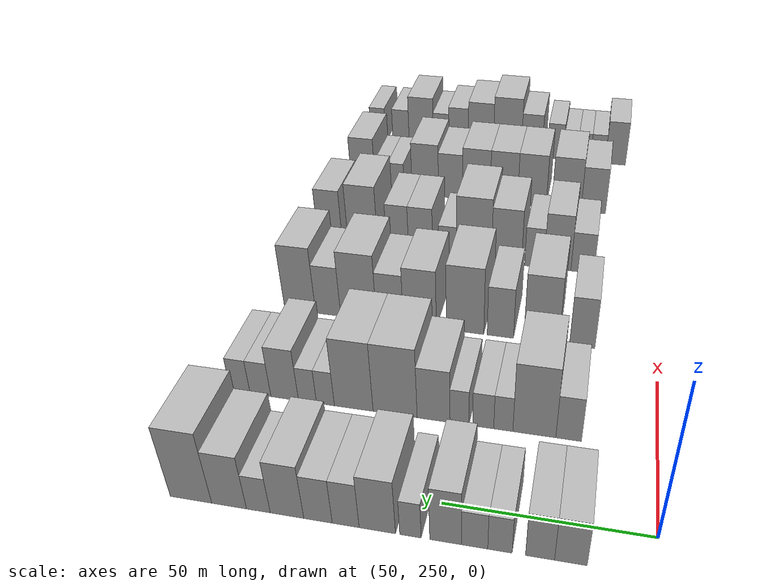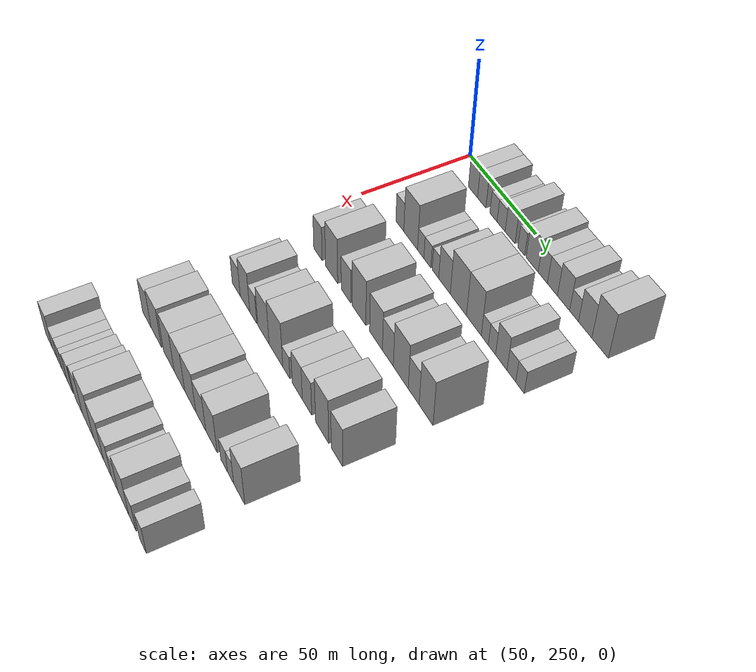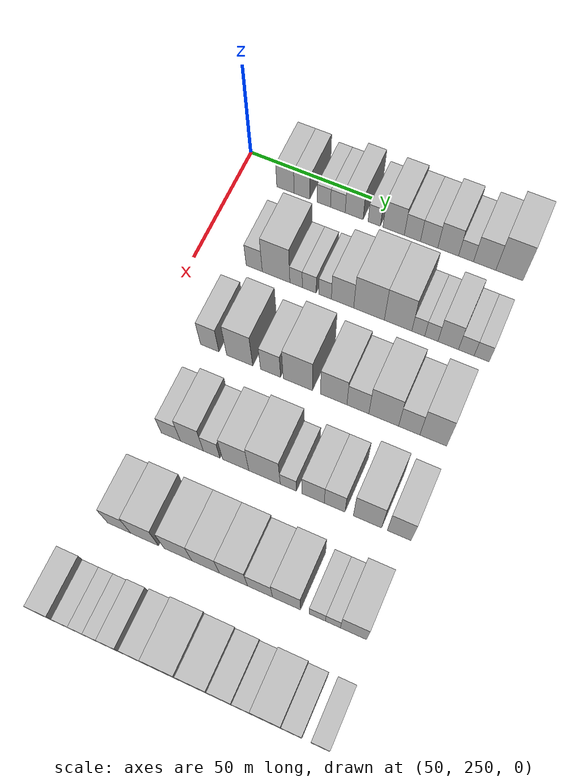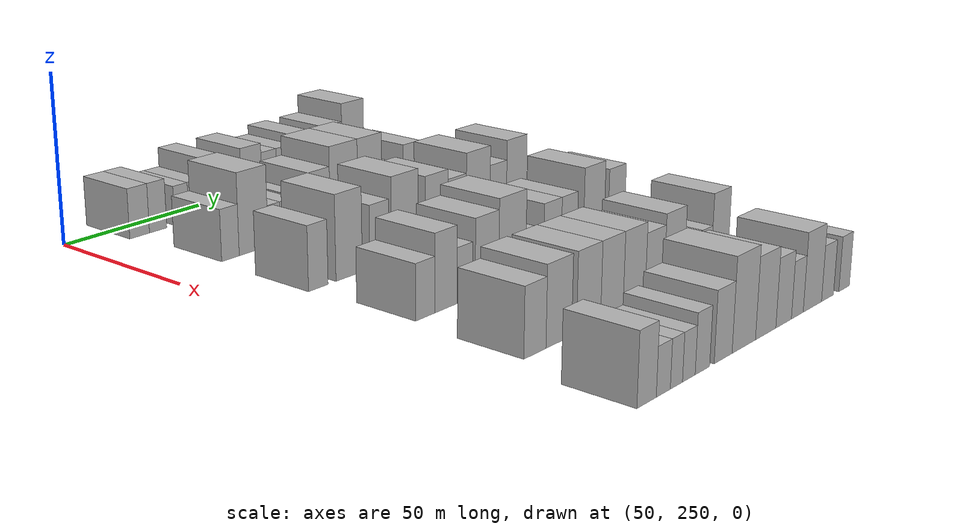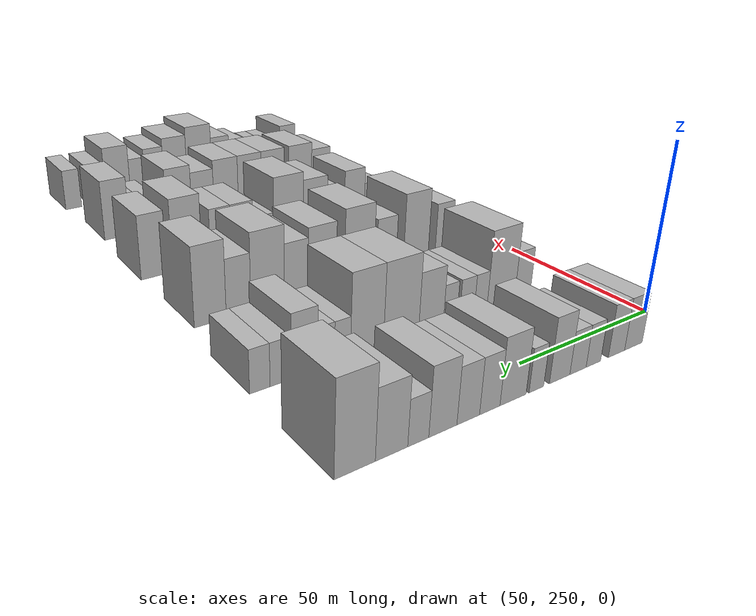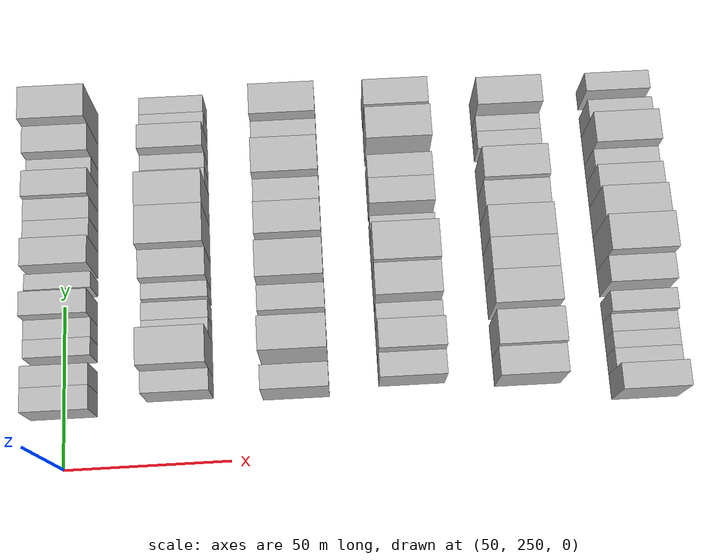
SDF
<sdf version="1.6">
 <world name="default">
  <model name="building_91">
   <static>1</static>
   <pose>50.0000 268.9574 0 0.000000 0.000000 0.000000</pose>
   <link name="link">
    <pose>0 0 7.50 0 0 0</pose>
    <collision name="collision"><geometry><box><size>20.0000 7.1795 15.0000</size></box></geometry></collision>
    <visual name="visual">
     <cast_shadows>0</cast_shadows>
     <geometry><box><size>20.0000 7.1795 15.0000</size></box></geometry>
     <material>
      <script>
       <uri>model://HANNAS_wall/materials/scripts</uri>
       <uri>model://HANNAS_wall/materials/textures</uri>
       <name>vrc/HANNAS_wall</name>
      </script>
     </material>
    </visual>
   </link>
  </model>
  <model name="building_92">
   <static>1</static>
   <pose>50.0000 275.7696 0 0.000000 0.000000 0.000000</pose>
   <link name="link">
    <pose>0 0 7.50 0 0 0</pose>
    <collision name="collision"><geometry><box><size>20.0000 6.4450 15.0000</size></box></geometry></collision>
    <visual name="visual">
     <cast_shadows>0</cast_shadows>
     <geometry><box><size>20.0000 6.4450 15.0000</size></box></geometry>
     <material>
      <script>
       <uri>model://HANNAS_wall/materials/scripts</uri>
       <uri>model://HANNAS_wall/materials/textures</uri>
       <name>vrc/HANNAS_wall</name>
      </script>
     </material>
    </visual>
   </link>
  </model>
  <model name="building_93">
   <static>1</static>
   <pose>50.0000 284.7324 0 0.000000 0.000000 0.000000</pose>
   <link name="link">
    <pose>0 0 6.00 0 0 0</pose>
    <collision name="collision"><geometry><box><size>20.0000 5.4806 12.0000</size></box></geometry></collision>
    <visual name="visual">
     <cast_shadows>0</cast_shadows>
     <geometry><box><size>20.0000 5.4806 12.0000</size></box></geometry>
     <material>
      <script>
       <uri>model://HANNAS_wall/materials/scripts</uri>
       <uri>model://HANNAS_wall/materials/textures</uri>
       <name>vrc/HANNAS_wall</name>
      </script>
     </material>
    </visual>
   </link>
  </model>
  <model name="building_94">
   <static>1</static>
   <pose>50.0000 290.4678 0 0.000000 0.000000 0.000000</pose>
   <link name="link">
    <pose>0 0 6.00 0 0 0</pose>
    <collision name="collision"><geometry><box><size>20.0000 5.9902 12.0000</size></box></geometry></collision>
    <visual name="visual">
     <cast_shadows>0</cast_shadows>
     <geometry><box><size>20.0000 5.9902 12.0000</size></box></geometry>
     <material>
      <script>
       <uri>model://HANNAS_wall/materials/scripts</uri>
       <uri>model://HANNAS_wall/materials/textures</uri>
       <name>vrc/HANNAS_wall</name>
      </script>
     </material>
    </visual>
   </link>
  </model>
  <model name="building_95">
   <static>1</static>
   <pose>50.0000 297.0967 0 0.000000 0.000000 0.000000</pose>
   <link name="link">
    <pose>0 0 9.00 0 0 0</pose>
    <collision name="collision"><geometry><box><size>20.0000 7.2676 18.0000</size></box></geometry></collision>
    <visual name="visual">
     <cast_shadows>0</cast_shadows>
     <geometry><box><size>20.0000 7.2676 18.0000</size></box></geometry>
     <material>
      <script>
       <uri>model://HANNAS_wall/materials/scripts</uri>
       <uri>model://HANNAS_wall/materials/textures</uri>
       <name>vrc/HANNAS_wall</name>
      </script>
     </material>
    </visual>
   </link>
  </model>
  <model name="building_96">
   <static>1</static>
   <pose>50.0000 305.2195 0 0.000000 0.000000 0.000000</pose>
   <link name="link">
    <pose>0 0 6.00 0 0 0</pose>
    <collision name="collision"><geometry><box><size>20.0000 4.9780 12.0000</size></box></geometry></collision>
    <visual name="visual">
     <cast_shadows>0</cast_shadows>
     <geometry><box><size>20.0000 4.9780 12.0000</size></box></geometry>
     <material>
      <script>
       <uri>model://HANNAS_wall/materials/scripts</uri>
       <uri>model://HANNAS_wall/materials/textures</uri>
       <name>vrc/HANNAS_wall</name>
      </script>
     </material>
    </visual>
   </link>
  </model>
  <model name="building_97">
   <static>1</static>
   <pose>50.0000 312.9854 0 0.000000 0.000000 0.000000</pose>
   <link name="link">
    <pose>0 0 9.00 0 0 0</pose>
    <collision name="collision"><geometry><box><size>20.0000 8.5539 18.0000</size></box></geometry></collision>
    <visual name="visual">
     <cast_shadows>0</cast_shadows>
     <geometry><box><size>20.0000 8.5539 18.0000</size></box></geometry>
     <material>
      <script>
       <uri>model://HANNAS_wall/materials/scripts</uri>
       <uri>model://HANNAS_wall/materials/textures</uri>
       <name>vrc/HANNAS_wall</name>
      </script>
     </material>
    </visual>
   </link>
  </model>
  <model name="building_98">
   <static>1</static>
   <pose>50.0000 320.4671 0 0.000000 0.000000 0.000000</pose>
   <link name="link">
    <pose>0 0 7.50 0 0 0</pose>
    <collision name="collision"><geometry><box><size>20.0000 6.4096 15.0000</size></box></geometry></collision>
    <visual name="visual">
     <cast_shadows>0</cast_shadows>
     <geometry><box><size>20.0000 6.4096 15.0000</size></box></geometry>
     <material>
      <script>
       <uri>model://HANNAS_wall/materials/scripts</uri>
       <uri>model://HANNAS_wall/materials/textures</uri>
       <name>vrc/HANNAS_wall</name>
      </script>
     </material>
    </visual>
   </link>
  </model>
  <model name="building_99">
   <static>1</static>
   <pose>50.0000 327.1015 0 0.000000 0.000000 0.000000</pose>
   <link name="link">
    <pose>0 0 7.50 0 0 0</pose>
    <collision name="collision"><geometry><box><size>20.0000 6.8591 15.0000</size></box></geometry></collision>
    <visual name="visual">
     <cast_shadows>0</cast_shadows>
     <geometry><box><size>20.0000 6.8591 15.0000</size></box></geometry>
     <material>
      <script>
       <uri>model://HANNAS_wall/materials/scripts</uri>
       <uri>model://HANNAS_wall/materials/textures</uri>
       <name>vrc/HANNAS_wall</name>
      </script>
     </material>
    </visual>
   </link>
  </model>
  <model name="building_100">
   <static>1</static>
   <pose>50.0000 334.6129 0 0.000000 0.000000 0.000000</pose>
   <link name="link">
    <pose>0 0 9.00 0 0 0</pose>
    <collision name="collision"><geometry><box><size>20.0000 8.1638 18.0000</size></box></geometry></collision>
    <visual name="visual">
     <cast_shadows>0</cast_shadows>
     <geometry><box><size>20.0000 8.1638 18.0000</size></box></geometry>
     <material>
      <script>
       <uri>model://HANNAS_wall/materials/scripts</uri>
       <uri>model://HANNAS_wall/materials/textures</uri>
       <name>vrc/HANNAS_wall</name>
      </script>
     </material>
    </visual>
   </link>
  </model>
  <model name="building_101">
   <static>1</static>
   <pose>50.0000 341.6225 0 0.000000 0.000000 0.000000</pose>
   <link name="link">
    <pose>0 0 6.00 0 0 0</pose>
    <collision name="collision"><geometry><box><size>20.0000 5.8554 12.0000</size></box></geometry></collision>
    <visual name="visual">
     <cast_shadows>0</cast_shadows>
     <geometry><box><size>20.0000 5.8554 12.0000</size></box></geometry>
     <material>
      <script>
       <uri>model://HANNAS_wall/materials/scripts</uri>
       <uri>model://HANNAS_wall/materials/textures</uri>
       <name>vrc/HANNAS_wall</name>
      </script>
     </material>
    </visual>
   </link>
  </model>
  <model name="building_102">
   <static>1</static>
   <pose>50.0000 348.8797 0 0.000000 0.000000 0.000000</pose>
   <link name="link">
    <pose>0 0 9.00 0 0 0</pose>
    <collision name="collision"><geometry><box><size>20.0000 8.6591 18.0000</size></box></geometry></collision>
    <visual name="visual">
     <cast_shadows>0</cast_shadows>
     <geometry><box><size>20.0000 8.6591 18.0000</size></box></geometry>
     <material>
      <script>
       <uri>model://HANNAS_wall/materials/scripts</uri>
       <uri>model://HANNAS_wall/materials/textures</uri>
       <name>vrc/HANNAS_wall</name>
      </script>
     </material>
    </visual>
   </link>
  </model>
  <model name="building_103">
   <static>1</static>
   <pose>50.0000 358.4333 0 0.000000 0.000000 0.000000</pose>
   <link name="link">
    <pose>0 0 12.00 0 0 0</pose>
    <collision name="collision"><geometry><box><size>20.0000 10.4479 24.0000</size></box></geometry></collision>
    <visual name="visual">
     <cast_shadows>0</cast_shadows>
     <geometry><box><size>20.0000 10.4479 24.0000</size></box></geometry>
     <material>
      <script>
       <uri>model://HANNAS_wall/materials/scripts</uri>
       <uri>model://HANNAS_wall/materials/textures</uri>
       <name>vrc/HANNAS_wall</name>
      </script>
     </material>
    </visual>
   </link>
  </model>
  <model name="building_221">
   <static>1</static>
   <pose>85.0000 272.3251 0 0.000000 0.000000 0.000000</pose>
   <link name="link">
    <pose>0 0 7.50 0 0 0</pose>
    <collision name="collision"><geometry><box><size>20.0000 6.4877 15.0000</size></box></geometry></collision>
    <visual name="visual">
     <cast_shadows>0</cast_shadows>
     <geometry><box><size>20.0000 6.4877 15.0000</size></box></geometry>
     <material>
      <script>
       <uri>model://HANNAS_wall/materials/scripts</uri>
       <uri>model://HANNAS_wall/materials/textures</uri>
       <name>vrc/HANNAS_wall</name>
      </script>
     </material>
    </visual>
   </link>
  </model>
  <model name="building_222">
   <static>1</static>
   <pose>85.0000 281.0751 0 0.000000 0.000000 0.000000</pose>
   <link name="link">
    <pose>0 0 12.00 0 0 0</pose>
    <collision name="collision"><geometry><box><size>20.0000 11.0123 24.0000</size></box></geometry></collision>
    <visual name="visual">
     <cast_shadows>0</cast_shadows>
     <geometry><box><size>20.0000 11.0123 24.0000</size></box></geometry>
     <material>
      <script>
       <uri>model://HANNAS_wall/materials/scripts</uri>
       <uri>model://HANNAS_wall/materials/textures</uri>
       <name>vrc/HANNAS_wall</name>
      </script>
     </material>
    </visual>
   </link>
  </model>
  <model name="building_223">
   <static>1</static>
   <pose>85.0000 289.0494 0 0.000000 0.000000 0.000000</pose>
   <link name="link">
    <pose>0 0 6.00 0 0 0</pose>
    <collision name="collision"><geometry><box><size>20.0000 4.9364 12.0000</size></box></geometry></collision>
    <visual name="visual">
     <cast_shadows>0</cast_shadows>
     <geometry><box><size>20.0000 4.9364 12.0000</size></box></geometry>
     <material>
      <script>
       <uri>model://HANNAS_wall/materials/scripts</uri>
       <uri>model://HANNAS_wall/materials/textures</uri>
       <name>vrc/HANNAS_wall</name>
      </script>
     </material>
    </visual>
   </link>
  </model>
  <model name="building_224">
   <static>1</static>
   <pose>85.0000 294.2669 0 0.000000 0.000000 0.000000</pose>
   <link name="link">
    <pose>0 0 6.00 0 0 0</pose>
    <collision name="collision"><geometry><box><size>20.0000 5.4985 12.0000</size></box></geometry></collision>
    <visual name="visual">
     <cast_shadows>0</cast_shadows>
     <geometry><box><size>20.0000 5.4985 12.0000</size></box></geometry>
     <material>
      <script>
       <uri>model://HANNAS_wall/materials/scripts</uri>
       <uri>model://HANNAS_wall/materials/textures</uri>
       <name>vrc/HANNAS_wall</name>
      </script>
     </material>
    </visual>
   </link>
  </model>
  <model name="building_225">
   <static>1</static>
   <pose>85.0000 300.5003 0 0.000000 0.000000 0.000000</pose>
   <link name="link">
    <pose>0 0 6.00 0 0 0</pose>
    <collision name="collision"><geometry><box><size>20.0000 4.9683 12.0000</size></box></geometry></collision>
    <visual name="visual">
     <cast_shadows>0</cast_shadows>
     <geometry><box><size>20.0000 4.9683 12.0000</size></box></geometry>
     <material>
      <script>
       <uri>model://HANNAS_wall/materials/scripts</uri>
       <uri>model://HANNAS_wall/materials/textures</uri>
       <name>vrc/HANNAS_wall</name>
      </script>
     </material>
    </visual>
   </link>
  </model>
  <model name="building_226">
   <static>1</static>
   <pose>85.0000 307.3470 0 0.000000 0.000000 0.000000</pose>
   <link name="link">
    <pose>0 0 9.00 0 0 0</pose>
    <collision name="collision"><geometry><box><size>20.0000 8.7251 18.0000</size></box></geometry></collision>
    <visual name="visual">
     <cast_shadows>0</cast_shadows>
     <geometry><box><size>20.0000 8.7251 18.0000</size></box></geometry>
     <material>
      <script>
       <uri>model://HANNAS_wall/materials/scripts</uri>
       <uri>model://HANNAS_wall/materials/textures</uri>
       <name>vrc/HANNAS_wall</name>
      </script>
     </material>
    </visual>
   </link>
  </model>
  <model name="building_227">
   <static>1</static>
   <pose>85.0000 317.6483 0 0.000000 0.000000 0.000000</pose>
   <link name="link">
    <pose>0 0 12.00 0 0 0</pose>
    <collision name="collision"><geometry><box><size>20.0000 11.8775 24.0000</size></box></geometry></collision>
    <visual name="visual">
     <cast_shadows>0</cast_shadows>
     <geometry><box><size>20.0000 11.8775 24.0000</size></box></geometry>
     <material>
      <script>
       <uri>model://HANNAS_wall/materials/scripts</uri>
       <uri>model://HANNAS_wall/materials/textures</uri>
       <name>vrc/HANNAS_wall</name>
      </script>
     </material>
    </visual>
   </link>
  </model>
  <model name="building_228">
   <static>1</static>
   <pose>85.0000 328.8834 0 0.000000 0.000000 0.000000</pose>
   <link name="link">
    <pose>0 0 12.00 0 0 0</pose>
    <collision name="collision"><geometry><box><size>20.0000 10.5927 24.0000</size></box></geometry></collision>
    <visual name="visual">
     <cast_shadows>0</cast_shadows>
     <geometry><box><size>20.0000 10.5927 24.0000</size></box></geometry>
     <material>
      <script>
       <uri>model://HANNAS_wall/materials/scripts</uri>
       <uri>model://HANNAS_wall/materials/textures</uri>
       <name>vrc/HANNAS_wall</name>
      </script>
     </material>
    </visual>
   </link>
  </model>
  <model name="building_229">
   <static>1</static>
   <pose>85.0000 336.6410 0 0.000000 0.000000 0.000000</pose>
   <link name="link">
    <pose>0 0 6.00 0 0 0</pose>
    <collision name="collision"><geometry><box><size>20.0000 4.9225 12.0000</size></box></geometry></collision>
    <visual name="visual">
     <cast_shadows>0</cast_shadows>
     <geometry><box><size>20.0000 4.9225 12.0000</size></box></geometry>
     <material>
      <script>
       <uri>model://HANNAS_wall/materials/scripts</uri>
       <uri>model://HANNAS_wall/materials/textures</uri>
       <name>vrc/HANNAS_wall</name>
      </script>
     </material>
    </visual>
   </link>
  </model>
  <model name="building_230">
   <static>1</static>
   <pose>85.0000 341.6131 0 0.000000 0.000000 0.000000</pose>
   <link name="link">
    <pose>0 0 6.00 0 0 0</pose>
    <collision name="collision"><geometry><box><size>20.0000 5.0216 12.0000</size></box></geometry></collision>
    <visual name="visual">
     <cast_shadows>0</cast_shadows>
     <geometry><box><size>20.0000 5.0216 12.0000</size></box></geometry>
     <material>
      <script>
       <uri>model://HANNAS_wall/materials/scripts</uri>
       <uri>model://HANNAS_wall/materials/textures</uri>
       <name>vrc/HANNAS_wall</name>
      </script>
     </material>
    </visual>
   </link>
  </model>
  <model name="building_231">
   <static>1</static>
   <pose>85.0000 348.0008 0 0.000000 0.000000 0.000000</pose>
   <link name="link">
    <pose>0 0 9.00 0 0 0</pose>
    <collision name="collision"><geometry><box><size>20.0000 7.7539 18.0000</size></box></geometry></collision>
    <visual name="visual">
     <cast_shadows>0</cast_shadows>
     <geometry><box><size>20.0000 7.7539 18.0000</size></box></geometry>
     <material>
      <script>
       <uri>model://HANNAS_wall/materials/scripts</uri>
       <uri>model://HANNAS_wall/materials/textures</uri>
       <name>vrc/HANNAS_wall</name>
      </script>
     </material>
    </visual>
   </link>
  </model>
  <model name="building_232">
   <static>1</static>
   <pose>85.0000 354.8182 0 0.000000 0.000000 0.000000</pose>
   <link name="link">
    <pose>0 0 6.00 0 0 0</pose>
    <collision name="collision"><geometry><box><size>20.0000 5.8808 12.0000</size></box></geometry></collision>
    <visual name="visual">
     <cast_shadows>0</cast_shadows>
     <geometry><box><size>20.0000 5.8808 12.0000</size></box></geometry>
     <material>
      <script>
       <uri>model://HANNAS_wall/materials/scripts</uri>
       <uri>model://HANNAS_wall/materials/textures</uri>
       <name>vrc/HANNAS_wall</name>
      </script>
     </material>
    </visual>
   </link>
  </model>
  <model name="building_233">
   <static>1</static>
   <pose>85.0000 360.5567 0 0.000000 0.000000 0.000000</pose>
   <link name="link">
    <pose>0 0 6.00 0 0 0</pose>
    <collision name="collision"><geometry><box><size>20.0000 5.5963 12.0000</size></box></geometry></collision>
    <visual name="visual">
     <cast_shadows>0</cast_shadows>
     <geometry><box><size>20.0000 5.5963 12.0000</size></box></geometry>
     <material>
      <script>
       <uri>model://HANNAS_wall/materials/scripts</uri>
       <uri>model://HANNAS_wall/materials/textures</uri>
       <name>vrc/HANNAS_wall</name>
      </script>
     </material>
    </visual>
   </link>
  </model>
  <model name="building_345">
   <static>1</static>
   <pose>120.0000 271.3483 0 0.000000 0.000000 0.000000</pose>
   <link name="link">
    <pose>0 0 9.00 0 0 0</pose>
    <collision name="collision"><geometry><box><size>20.0000 7.2329 18.0000</size></box></geometry></collision>
    <visual name="visual">
     <cast_shadows>0</cast_shadows>
     <geometry><box><size>20.0000 7.2329 18.0000</size></box></geometry>
     <material>
      <script>
       <uri>model://HANNAS_wall/materials/scripts</uri>
       <uri>model://HANNAS_wall/materials/textures</uri>
       <name>vrc/HANNAS_wall</name>
      </script>
     </material>
    </visual>
   </link>
  </model>
  <model name="building_346">
   <static>1</static>
   <pose>120.0000 283.0501 0 0.000000 0.000000 0.000000</pose>
   <link name="link">
    <pose>0 0 12.00 0 0 0</pose>
    <collision name="collision"><geometry><box><size>20.0000 10.1707 24.0000</size></box></geometry></collision>
    <visual name="visual">
     <cast_shadows>0</cast_shadows>
     <geometry><box><size>20.0000 10.1707 24.0000</size></box></geometry>
     <material>
      <script>
       <uri>model://HANNAS_wall/materials/scripts</uri>
       <uri>model://HANNAS_wall/materials/textures</uri>
       <name>vrc/HANNAS_wall</name>
      </script>
     </material>
    </visual>
   </link>
  </model>
  <model name="building_347">
   <static>1</static>
   <pose>120.0000 294.9960 0 0.000000 0.000000 0.000000</pose>
   <link name="link">
    <pose>0 0 9.00 0 0 0</pose>
    <collision name="collision"><geometry><box><size>20.0000 7.7211 18.0000</size></box></geometry></collision>
    <visual name="visual">
     <cast_shadows>0</cast_shadows>
     <geometry><box><size>20.0000 7.7211 18.0000</size></box></geometry>
     <material>
      <script>
       <uri>model://HANNAS_wall/materials/scripts</uri>
       <uri>model://HANNAS_wall/materials/textures</uri>
       <name>vrc/HANNAS_wall</name>
      </script>
     </material>
    </visual>
   </link>
  </model>
  <model name="building_348">
   <static>1</static>
   <pose>120.0000 305.4218 0 0.000000 0.000000 0.000000</pose>
   <link name="link">
    <pose>0 0 12.00 0 0 0</pose>
    <collision name="collision"><geometry><box><size>20.0000 11.1305 24.0000</size></box></geometry></collision>
    <visual name="visual">
     <cast_shadows>0</cast_shadows>
     <geometry><box><size>20.0000 11.1305 24.0000</size></box></geometry>
     <material>
      <script>
       <uri>model://HANNAS_wall/materials/scripts</uri>
       <uri>model://HANNAS_wall/materials/textures</uri>
       <name>vrc/HANNAS_wall</name>
      </script>
     </material>
    </visual>
   </link>
  </model>
  <model name="building_349">
   <static>1</static>
   <pose>120.0000 318.9699 0 0.000000 0.000000 0.000000</pose>
   <link name="link">
    <pose>0 0 10.50 0 0 0</pose>
    <collision name="collision"><geometry><box><size>20.0000 9.9656 21.0000</size></box></geometry></collision>
    <visual name="visual">
     <cast_shadows>0</cast_shadows>
     <geometry><box><size>20.0000 9.9656 21.0000</size></box></geometry>
     <material>
      <script>
       <uri>model://HANNAS_wall/materials/scripts</uri>
       <uri>model://HANNAS_wall/materials/textures</uri>
       <name>vrc/HANNAS_wall</name>
      </script>
     </material>
    </visual>
   </link>
  </model>
  <model name="building_350">
   <static>1</static>
   <pose>120.0000 328.0568 0 0.000000 0.000000 0.000000</pose>
   <link name="link">
    <pose>0 0 9.00 0 0 0</pose>
    <collision name="collision"><geometry><box><size>20.0000 8.2082 18.0000</size></box></geometry></collision>
    <visual name="visual">
     <cast_shadows>0</cast_shadows>
     <geometry><box><size>20.0000 8.2082 18.0000</size></box></geometry>
     <material>
      <script>
       <uri>model://HANNAS_wall/materials/scripts</uri>
       <uri>model://HANNAS_wall/materials/textures</uri>
       <name>vrc/HANNAS_wall</name>
      </script>
     </material>
    </visual>
   </link>
  </model>
  <model name="building_351">
   <static>1</static>
   <pose>120.0000 337.6821 0 0.000000 0.000000 0.000000</pose>
   <link name="link">
    <pose>0 0 12.00 0 0 0</pose>
    <collision name="collision"><geometry><box><size>20.0000 11.0425 24.0000</size></box></geometry></collision>
    <visual name="visual">
     <cast_shadows>0</cast_shadows>
     <geometry><box><size>20.0000 11.0425 24.0000</size></box></geometry>
     <material>
      <script>
       <uri>model://HANNAS_wall/materials/scripts</uri>
       <uri>model://HANNAS_wall/materials/textures</uri>
       <name>vrc/HANNAS_wall</name>
      </script>
     </material>
    </visual>
   </link>
  </model>
  <model name="building_352">
   <static>1</static>
   <pose>120.0000 347.1144 0 0.000000 0.000000 0.000000</pose>
   <link name="link">
    <pose>0 0 9.00 0 0 0</pose>
    <collision name="collision"><geometry><box><size>20.0000 7.8221 18.0000</size></box></geometry></collision>
    <visual name="visual">
     <cast_shadows>0</cast_shadows>
     <geometry><box><size>20.0000 7.8221 18.0000</size></box></geometry>
     <material>
      <script>
       <uri>model://HANNAS_wall/materials/scripts</uri>
       <uri>model://HANNAS_wall/materials/textures</uri>
       <name>vrc/HANNAS_wall</name>
      </script>
     </material>
    </visual>
   </link>
  </model>
  <model name="building_353">
   <static>1</static>
   <pose>120.0000 355.9072 0 0.000000 0.000000 0.000000</pose>
   <link name="link">
    <pose>0 0 12.00 0 0 0</pose>
    <collision name="collision"><geometry><box><size>20.0000 9.7635 24.0000</size></box></geometry></collision>
    <visual name="visual">
     <cast_shadows>0</cast_shadows>
     <geometry><box><size>20.0000 9.7635 24.0000</size></box></geometry>
     <material>
      <script>
       <uri>model://HANNAS_wall/materials/scripts</uri>
       <uri>model://HANNAS_wall/materials/textures</uri>
       <name>vrc/HANNAS_wall</name>
      </script>
     </material>
    </visual>
   </link>
  </model>
  <model name="building_463">
   <static>1</static>
   <pose>155.0000 273.6976 0 0.000000 0.000000 0.000000</pose>
   <link name="link">
    <pose>0 0 7.50 0 0 0</pose>
    <collision name="collision"><geometry><box><size>20.0000 7.3378 15.0000</size></box></geometry></collision>
    <visual name="visual">
     <cast_shadows>0</cast_shadows>
     <geometry><box><size>20.0000 7.3378 15.0000</size></box></geometry>
     <material>
      <script>
       <uri>model://HANNAS_wall/materials/scripts</uri>
       <uri>model://HANNAS_wall/materials/textures</uri>
       <name>vrc/HANNAS_wall</name>
      </script>
     </material>
    </visual>
   </link>
  </model>
  <model name="building_464">
   <static>1</static>
   <pose>155.0000 281.6898 0 0.000000 0.000000 0.000000</pose>
   <link name="link">
    <pose>0 0 10.50 0 0 0</pose>
    <collision name="collision"><geometry><box><size>20.0000 8.6465 21.0000</size></box></geometry></collision>
    <visual name="visual">
     <cast_shadows>0</cast_shadows>
     <geometry><box><size>20.0000 8.6465 21.0000</size></box></geometry>
     <material>
      <script>
       <uri>model://HANNAS_wall/materials/scripts</uri>
       <uri>model://HANNAS_wall/materials/textures</uri>
       <name>vrc/HANNAS_wall</name>
      </script>
     </material>
    </visual>
   </link>
  </model>
  <model name="building_465">
   <static>1</static>
   <pose>155.0000 289.1378 0 0.000000 0.000000 0.000000</pose>
   <link name="link">
    <pose>0 0 7.50 0 0 0</pose>
    <collision name="collision"><geometry><box><size>20.0000 6.2496 15.0000</size></box></geometry></collision>
    <visual name="visual">
     <cast_shadows>0</cast_shadows>
     <geometry><box><size>20.0000 6.2496 15.0000</size></box></geometry>
     <material>
      <script>
       <uri>model://HANNAS_wall/materials/scripts</uri>
       <uri>model://HANNAS_wall/materials/textures</uri>
       <name>vrc/HANNAS_wall</name>
      </script>
     </material>
    </visual>
   </link>
  </model>
  <model name="building_466">
   <static>1</static>
   <pose>155.0000 298.1513 0 0.000000 0.000000 0.000000</pose>
   <link name="link">
    <pose>0 0 10.50 0 0 0</pose>
    <collision name="collision"><geometry><box><size>20.0000 9.7773 21.0000</size></box></geometry></collision>
    <visual name="visual">
     <cast_shadows>0</cast_shadows>
     <geometry><box><size>20.0000 9.7773 21.0000</size></box></geometry>
     <material>
      <script>
       <uri>model://HANNAS_wall/materials/scripts</uri>
       <uri>model://HANNAS_wall/materials/textures</uri>
       <name>vrc/HANNAS_wall</name>
      </script>
     </material>
    </visual>
   </link>
  </model>
  <model name="building_467">
   <static>1</static>
   <pose>155.0000 308.8513 0 0.000000 0.000000 0.000000</pose>
   <link name="link">
    <pose>0 0 12.00 0 0 0</pose>
    <collision name="collision"><geometry><box><size>20.0000 11.6228 24.0000</size></box></geometry></collision>
    <visual name="visual">
     <cast_shadows>0</cast_shadows>
     <geometry><box><size>20.0000 11.6228 24.0000</size></box></geometry>
     <material>
      <script>
       <uri>model://HANNAS_wall/materials/scripts</uri>
       <uri>model://HANNAS_wall/materials/textures</uri>
       <name>vrc/HANNAS_wall</name>
      </script>
     </material>
    </visual>
   </link>
  </model>
  <model name="building_468">
   <static>1</static>
   <pose>155.0000 317.6280 0 0.000000 0.000000 0.000000</pose>
   <link name="link">
    <pose>0 0 6.00 0 0 0</pose>
    <collision name="collision"><geometry><box><size>20.0000 5.9306 12.0000</size></box></geometry></collision>
    <visual name="visual">
     <cast_shadows>0</cast_shadows>
     <geometry><box><size>20.0000 5.9306 12.0000</size></box></geometry>
     <material>
      <script>
       <uri>model://HANNAS_wall/materials/scripts</uri>
       <uri>model://HANNAS_wall/materials/textures</uri>
       <name>vrc/HANNAS_wall</name>
      </script>
     </material>
    </visual>
   </link>
  </model>
  <model name="building_469">
   <static>1</static>
   <pose>155.0000 326.6510 0 0.000000 0.000000 0.000000</pose>
   <link name="link">
    <pose>0 0 9.00 0 0 0</pose>
    <collision name="collision"><geometry><box><size>20.0000 8.1154 18.0000</size></box></geometry></collision>
    <visual name="visual">
     <cast_shadows>0</cast_shadows>
     <geometry><box><size>20.0000 8.1154 18.0000</size></box></geometry>
     <material>
      <script>
       <uri>model://HANNAS_wall/materials/scripts</uri>
       <uri>model://HANNAS_wall/materials/textures</uri>
       <name>vrc/HANNAS_wall</name>
      </script>
     </material>
    </visual>
   </link>
  </model>
  <model name="building_470">
   <static>1</static>
   <pose>155.0000 334.4472 0 0.000000 0.000000 0.000000</pose>
   <link name="link">
    <pose>0 0 9.00 0 0 0</pose>
    <collision name="collision"><geometry><box><size>20.0000 7.4770 18.0000</size></box></geometry></collision>
    <visual name="visual">
     <cast_shadows>0</cast_shadows>
     <geometry><box><size>20.0000 7.4770 18.0000</size></box></geometry>
     <material>
      <script>
       <uri>model://HANNAS_wall/materials/scripts</uri>
       <uri>model://HANNAS_wall/materials/textures</uri>
       <name>vrc/HANNAS_wall</name>
      </script>
     </material>
    </visual>
   </link>
  </model>
  <model name="building_471">
   <static>1</static>
   <pose>155.0000 346.2507 0 0.000000 0.000000 0.000000</pose>
   <link name="link">
    <pose>0 0 12.00 0 0 0</pose>
    <collision name="collision"><geometry><box><size>20.0000 10.1299 24.0000</size></box></geometry></collision>
    <visual name="visual">
     <cast_shadows>0</cast_shadows>
     <geometry><box><size>20.0000 10.1299 24.0000</size></box></geometry>
     <material>
      <script>
       <uri>model://HANNAS_wall/materials/scripts</uri>
       <uri>model://HANNAS_wall/materials/textures</uri>
       <name>vrc/HANNAS_wall</name>
      </script>
     </material>
    </visual>
   </link>
  </model>
  <model name="building_472">
   <static>1</static>
   <pose>155.0000 357.5226 0 0.000000 0.000000 0.000000</pose>
   <link name="link">
    <pose>0 0 10.50 0 0 0</pose>
    <collision name="collision"><geometry><box><size>20.0000 8.4140 21.0000</size></box></geometry></collision>
    <visual name="visual">
     <cast_shadows>0</cast_shadows>
     <geometry><box><size>20.0000 8.4140 21.0000</size></box></geometry>
     <material>
      <script>
       <uri>model://HANNAS_wall/materials/scripts</uri>
       <uri>model://HANNAS_wall/materials/textures</uri>
       <name>vrc/HANNAS_wall</name>
      </script>
     </material>
    </visual>
   </link>
  </model>
  <model name="building_584">
   <static>1</static>
   <pose>190.0000 272.3581 0 0.000000 0.000000 0.000000</pose>
   <link name="link">
    <pose>0 0 9.00 0 0 0</pose>
    <collision name="collision"><geometry><box><size>20.0000 8.5732 18.0000</size></box></geometry></collision>
    <visual name="visual">
     <cast_shadows>0</cast_shadows>
     <geometry><box><size>20.0000 8.5732 18.0000</size></box></geometry>
     <material>
      <script>
       <uri>model://HANNAS_wall/materials/scripts</uri>
       <uri>model://HANNAS_wall/materials/textures</uri>
       <name>vrc/HANNAS_wall</name>
      </script>
     </material>
    </visual>
   </link>
  </model>
  <model name="building_585">
   <static>1</static>
   <pose>190.0000 281.8003 0 0.000000 0.000000 0.000000</pose>
   <link name="link">
    <pose>0 0 10.50 0 0 0</pose>
    <collision name="collision"><geometry><box><size>20.0000 10.3112 21.0000</size></box></geometry></collision>
    <visual name="visual">
     <cast_shadows>0</cast_shadows>
     <geometry><box><size>20.0000 10.3112 21.0000</size></box></geometry>
     <material>
      <script>
       <uri>model://HANNAS_wall/materials/scripts</uri>
       <uri>model://HANNAS_wall/materials/textures</uri>
       <name>vrc/HANNAS_wall</name>
      </script>
     </material>
    </visual>
   </link>
  </model>
  <model name="building_586">
   <static>1</static>
   <pose>190.0000 294.0493 0 0.000000 0.000000 0.000000</pose>
   <link name="link">
    <pose>0 0 10.50 0 0 0</pose>
    <collision name="collision"><geometry><box><size>20.0000 10.1868 21.0000</size></box></geometry></collision>
    <visual name="visual">
     <cast_shadows>0</cast_shadows>
     <geometry><box><size>20.0000 10.1868 21.0000</size></box></geometry>
     <material>
      <script>
       <uri>model://HANNAS_wall/materials/scripts</uri>
       <uri>model://HANNAS_wall/materials/textures</uri>
       <name>vrc/HANNAS_wall</name>
      </script>
     </material>
    </visual>
   </link>
  </model>
  <model name="building_587">
   <static>1</static>
   <pose>190.0000 304.0812 0 0.000000 0.000000 0.000000</pose>
   <link name="link">
    <pose>0 0 10.50 0 0 0</pose>
    <collision name="collision"><geometry><box><size>20.0000 9.8770 21.0000</size></box></geometry></collision>
    <visual name="visual">
     <cast_shadows>0</cast_shadows>
     <geometry><box><size>20.0000 9.8770 21.0000</size></box></geometry>
     <material>
      <script>
       <uri>model://HANNAS_wall/materials/scripts</uri>
       <uri>model://HANNAS_wall/materials/textures</uri>
       <name>vrc/HANNAS_wall</name>
      </script>
     </material>
    </visual>
   </link>
  </model>
  <model name="building_588">
   <static>1</static>
   <pose>190.0000 314.0362 0 0.000000 0.000000 0.000000</pose>
   <link name="link">
    <pose>0 0 10.50 0 0 0</pose>
    <collision name="collision"><geometry><box><size>20.0000 10.0329 21.0000</size></box></geometry></collision>
    <visual name="visual">
     <cast_shadows>0</cast_shadows>
     <geometry><box><size>20.0000 10.0329 21.0000</size></box></geometry>
     <material>
      <script>
       <uri>model://HANNAS_wall/materials/scripts</uri>
       <uri>model://HANNAS_wall/materials/textures</uri>
       <name>vrc/HANNAS_wall</name>
      </script>
     </material>
    </visual>
   </link>
  </model>
  <model name="building_589">
   <static>1</static>
   <pose>190.0000 323.4920 0 0.000000 0.000000 0.000000</pose>
   <link name="link">
    <pose>0 0 9.00 0 0 0</pose>
    <collision name="collision"><geometry><box><size>20.0000 8.8789 18.0000</size></box></geometry></collision>
    <visual name="visual">
     <cast_shadows>0</cast_shadows>
     <geometry><box><size>20.0000 8.8789 18.0000</size></box></geometry>
     <material>
      <script>
       <uri>model://HANNAS_wall/materials/scripts</uri>
       <uri>model://HANNAS_wall/materials/textures</uri>
       <name>vrc/HANNAS_wall</name>
      </script>
     </material>
    </visual>
   </link>
  </model>
  <model name="building_590">
   <static>1</static>
   <pose>190.0000 332.8341 0 0.000000 0.000000 0.000000</pose>
   <link name="link">
    <pose>0 0 10.50 0 0 0</pose>
    <collision name="collision"><geometry><box><size>20.0000 9.8052 21.0000</size></box></geometry></collision>
    <visual name="visual">
     <cast_shadows>0</cast_shadows>
     <geometry><box><size>20.0000 9.8052 21.0000</size></box></geometry>
     <material>
      <script>
       <uri>model://HANNAS_wall/materials/scripts</uri>
       <uri>model://HANNAS_wall/materials/textures</uri>
       <name>vrc/HANNAS_wall</name>
      </script>
     </material>
    </visual>
   </link>
  </model>
  <model name="building_591">
   <static>1</static>
   <pose>190.0000 343.5621 0 0.000000 0.000000 0.000000</pose>
   <link name="link">
    <pose>0 0 6.00 0 0 0</pose>
    <collision name="collision"><geometry><box><size>20.0000 5.6508 12.0000</size></box></geometry></collision>
    <visual name="visual">
     <cast_shadows>0</cast_shadows>
     <geometry><box><size>20.0000 5.6508 12.0000</size></box></geometry>
     <material>
      <script>
       <uri>model://HANNAS_wall/materials/scripts</uri>
       <uri>model://HANNAS_wall/materials/textures</uri>
       <name>vrc/HANNAS_wall</name>
      </script>
     </material>
    </visual>
   </link>
  </model>
  <model name="building_592">
   <static>1</static>
   <pose>190.0000 348.9629 0 0.000000 0.000000 0.000000</pose>
   <link name="link">
    <pose>0 0 6.00 0 0 0</pose>
    <collision name="collision"><geometry><box><size>20.0000 5.1509 12.0000</size></box></geometry></collision>
    <visual name="visual">
     <cast_shadows>0</cast_shadows>
     <geometry><box><size>20.0000 5.1509 12.0000</size></box></geometry>
     <material>
      <script>
       <uri>model://HANNAS_wall/materials/scripts</uri>
       <uri>model://HANNAS_wall/materials/textures</uri>
       <name>vrc/HANNAS_wall</name>
      </script>
     </material>
    </visual>
   </link>
  </model>
  <model name="building_593">
   <static>1</static>
   <pose>190.0000 356.0215 0 0.000000 0.000000 0.000000</pose>
   <link name="link">
    <pose>0 0 10.50 0 0 0</pose>
    <collision name="collision"><geometry><box><size>20.0000 8.9663 21.0000</size></box></geometry></collision>
    <visual name="visual">
     <cast_shadows>0</cast_shadows>
     <geometry><box><size>20.0000 8.9663 21.0000</size></box></geometry>
     <material>
      <script>
       <uri>model://HANNAS_wall/materials/scripts</uri>
       <uri>model://HANNAS_wall/materials/textures</uri>
       <name>vrc/HANNAS_wall</name>
      </script>
     </material>
    </visual>
   </link>
  </model>
  <model name="building_715">
   <static>1</static>
   <pose>225.0000 265.9748 0 0.000000 0.000000 0.000000</pose>
   <link name="link">
    <pose>0 0 9.00 0 0 0</pose>
    <collision name="collision"><geometry><box><size>20.0000 7.6331 18.0000</size></box></geometry></collision>
    <visual name="visual">
     <cast_shadows>0</cast_shadows>
     <geometry><box><size>20.0000 7.6331 18.0000</size></box></geometry>
     <material>
      <script>
       <uri>model://HANNAS_wall/materials/scripts</uri>
       <uri>model://HANNAS_wall/materials/textures</uri>
       <name>vrc/HANNAS_wall</name>
      </script>
     </material>
    </visual>
   </link>
  </model>
  <model name="building_716">
   <static>1</static>
   <pose>225.0000 272.6370 0 0.000000 0.000000 0.000000</pose>
   <link name="link">
    <pose>0 0 6.00 0 0 0</pose>
    <collision name="collision"><geometry><box><size>20.0000 5.6913 12.0000</size></box></geometry></collision>
    <visual name="visual">
     <cast_shadows>0</cast_shadows>
     <geometry><box><size>20.0000 5.6913 12.0000</size></box></geometry>
     <material>
      <script>
       <uri>model://HANNAS_wall/materials/scripts</uri>
       <uri>model://HANNAS_wall/materials/textures</uri>
       <name>vrc/HANNAS_wall</name>
      </script>
     </material>
    </visual>
   </link>
  </model>
  <model name="building_717">
   <static>1</static>
   <pose>225.0000 278.0093 0 0.000000 0.000000 0.000000</pose>
   <link name="link">
    <pose>0 0 6.00 0 0 0</pose>
    <collision name="collision"><geometry><box><size>20.0000 5.0533 12.0000</size></box></geometry></collision>
    <visual name="visual">
     <cast_shadows>0</cast_shadows>
     <geometry><box><size>20.0000 5.0533 12.0000</size></box></geometry>
     <material>
      <script>
       <uri>model://HANNAS_wall/materials/scripts</uri>
       <uri>model://HANNAS_wall/materials/textures</uri>
       <name>vrc/HANNAS_wall</name>
      </script>
     </material>
    </visual>
   </link>
  </model>
  <model name="building_718">
   <static>1</static>
   <pose>225.0000 283.2287 0 0.000000 0.000000 0.000000</pose>
   <link name="link">
    <pose>0 0 6.00 0 0 0</pose>
    <collision name="collision"><geometry><box><size>20.0000 5.3854 12.0000</size></box></geometry></collision>
    <visual name="visual">
     <cast_shadows>0</cast_shadows>
     <geometry><box><size>20.0000 5.3854 12.0000</size></box></geometry>
     <material>
      <script>
       <uri>model://HANNAS_wall/materials/scripts</uri>
       <uri>model://HANNAS_wall/materials/textures</uri>
       <name>vrc/HANNAS_wall</name>
      </script>
     </material>
    </visual>
   </link>
  </model>
  <model name="building_719">
   <static>1</static>
   <pose>225.0000 289.0687 0 0.000000 0.000000 0.000000</pose>
   <link name="link">
    <pose>0 0 7.50 0 0 0</pose>
    <collision name="collision"><geometry><box><size>20.0000 6.2947 15.0000</size></box></geometry></collision>
    <visual name="visual">
     <cast_shadows>0</cast_shadows>
     <geometry><box><size>20.0000 6.2947 15.0000</size></box></geometry>
     <material>
      <script>
       <uri>model://HANNAS_wall/materials/scripts</uri>
       <uri>model://HANNAS_wall/materials/textures</uri>
       <name>vrc/HANNAS_wall</name>
      </script>
     </material>
    </visual>
   </link>
  </model>
  <model name="building_720">
   <static>1</static>
   <pose>225.0000 298.2575 0 0.000000 0.000000 0.000000</pose>
   <link name="link">
    <pose>0 0 9.00 0 0 0</pose>
    <collision name="collision"><geometry><box><size>20.0000 8.0828 18.0000</size></box></geometry></collision>
    <visual name="visual">
     <cast_shadows>0</cast_shadows>
     <geometry><box><size>20.0000 8.0828 18.0000</size></box></geometry>
     <material>
      <script>
       <uri>model://HANNAS_wall/materials/scripts</uri>
       <uri>model://HANNAS_wall/materials/textures</uri>
       <name>vrc/HANNAS_wall</name>
      </script>
     </material>
    </visual>
   </link>
  </model>
  <model name="building_721">
   <static>1</static>
   <pose>225.0000 307.7945 0 0.000000 0.000000 0.000000</pose>
   <link name="link">
    <pose>0 0 12.00 0 0 0</pose>
    <collision name="collision"><geometry><box><size>20.0000 10.9911 24.0000</size></box></geometry></collision>
    <visual name="visual">
     <cast_shadows>0</cast_shadows>
     <geometry><box><size>20.0000 10.9911 24.0000</size></box></geometry>
     <material>
      <script>
       <uri>model://HANNAS_wall/materials/scripts</uri>
       <uri>model://HANNAS_wall/materials/textures</uri>
       <name>vrc/HANNAS_wall</name>
      </script>
     </material>
    </visual>
   </link>
  </model>
  <model name="building_722">
   <static>1</static>
   <pose>225.0000 318.2836 0 0.000000 0.000000 0.000000</pose>
   <link name="link">
    <pose>0 0 10.50 0 0 0</pose>
    <collision name="collision"><geometry><box><size>20.0000 9.9871 21.0000</size></box></geometry></collision>
    <visual name="visual">
     <cast_shadows>0</cast_shadows>
     <geometry><box><size>20.0000 9.9871 21.0000</size></box></geometry>
     <material>
      <script>
       <uri>model://HANNAS_wall/materials/scripts</uri>
       <uri>model://HANNAS_wall/materials/textures</uri>
       <name>vrc/HANNAS_wall</name>
      </script>
     </material>
    </visual>
   </link>
  </model>
  <model name="building_723">
   <static>1</static>
   <pose>225.0000 327.2197 0 0.000000 0.000000 0.000000</pose>
   <link name="link">
    <pose>0 0 9.00 0 0 0</pose>
    <collision name="collision"><geometry><box><size>20.0000 7.8851 18.0000</size></box></geometry></collision>
    <visual name="visual">
     <cast_shadows>0</cast_shadows>
     <geometry><box><size>20.0000 7.8851 18.0000</size></box></geometry>
     <material>
      <script>
       <uri>model://HANNAS_wall/materials/scripts</uri>
       <uri>model://HANNAS_wall/materials/textures</uri>
       <name>vrc/HANNAS_wall</name>
      </script>
     </material>
    </visual>
   </link>
  </model>
  <model name="building_724">
   <static>1</static>
   <pose>225.0000 334.2433 0 0.000000 0.000000 0.000000</pose>
   <link name="link">
    <pose>0 0 7.50 0 0 0</pose>
    <collision name="collision"><geometry><box><size>20.0000 6.1621 15.0000</size></box></geometry></collision>
    <visual name="visual">
     <cast_shadows>0</cast_shadows>
     <geometry><box><size>20.0000 6.1621 15.0000</size></box></geometry>
     <material>
      <script>
       <uri>model://HANNAS_wall/materials/scripts</uri>
       <uri>model://HANNAS_wall/materials/textures</uri>
       <name>vrc/HANNAS_wall</name>
      </script>
     </material>
    </visual>
   </link>
  </model>
  <model name="building_725">
   <static>1</static>
   <pose>225.0000 342.2385 0 0.000000 0.000000 0.000000</pose>
   <link name="link">
    <pose>0 0 10.50 0 0 0</pose>
    <collision name="collision"><geometry><box><size>20.0000 9.8281 21.0000</size></box></geometry></collision>
    <visual name="visual">
     <cast_shadows>0</cast_shadows>
     <geometry><box><size>20.0000 9.8281 21.0000</size></box></geometry>
     <material>
      <script>
       <uri>model://HANNAS_wall/materials/scripts</uri>
       <uri>model://HANNAS_wall/materials/textures</uri>
       <name>vrc/HANNAS_wall</name>
      </script>
     </material>
    </visual>
   </link>
  </model>
  <model name="building_726">
   <static>1</static>
   <pose>225.0000 350.4679 0 0.000000 0.000000 0.000000</pose>
   <link name="link">
    <pose>0 0 7.50 0 0 0</pose>
    <collision name="collision"><geometry><box><size>20.0000 6.6309 15.0000</size></box></geometry></collision>
    <visual name="visual">
     <cast_shadows>0</cast_shadows>
     <geometry><box><size>20.0000 6.6309 15.0000</size></box></geometry>
     <material>
      <script>
       <uri>model://HANNAS_wall/materials/scripts</uri>
       <uri>model://HANNAS_wall/materials/textures</uri>
       <name>vrc/HANNAS_wall</name>
      </script>
     </material>
    </visual>
   </link>
  </model>
  <model name="building_727">
   <static>1</static>
   <pose>225.0000 359.8104 0 0.000000 0.000000 0.000000</pose>
   <link name="link">
    <pose>0 0 7.50 0 0 0</pose>
    <collision name="collision"><geometry><box><size>20.0000 6.0541 15.0000</size></box></geometry></collision>
    <visual name="visual">
     <cast_shadows>0</cast_shadows>
     <geometry><box><size>20.0000 6.0541 15.0000</size></box></geometry>
     <material>
      <script>
       <uri>model://HANNAS_wall/materials/scripts</uri>
       <uri>model://HANNAS_wall/materials/textures</uri>
       <name>vrc/HANNAS_wall</name>
      </script>
     </material>
    </visual>
   </link>
  </model>
 </world>
</sdf>
